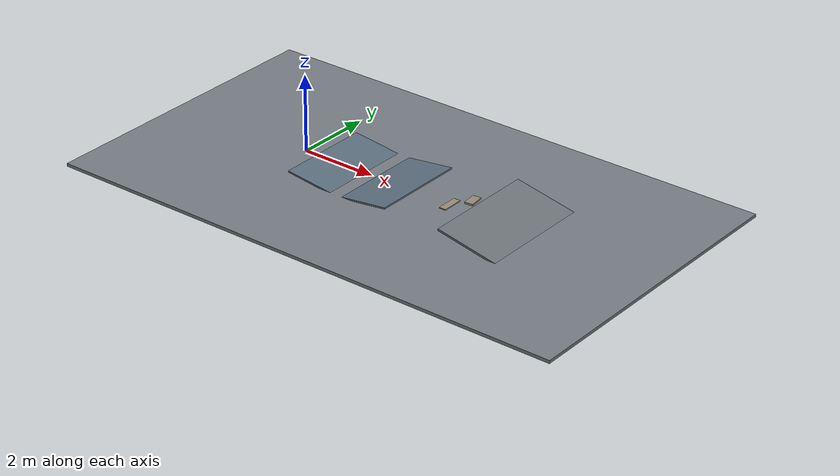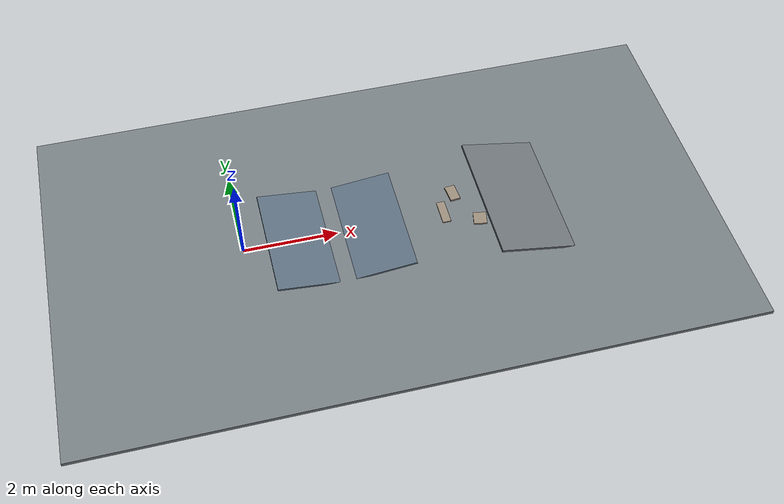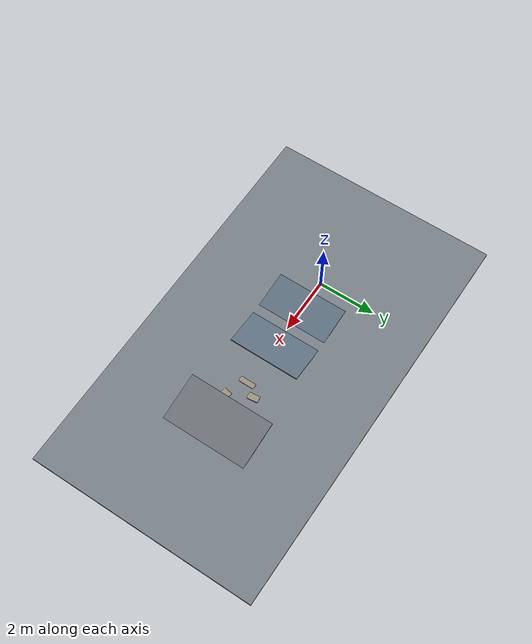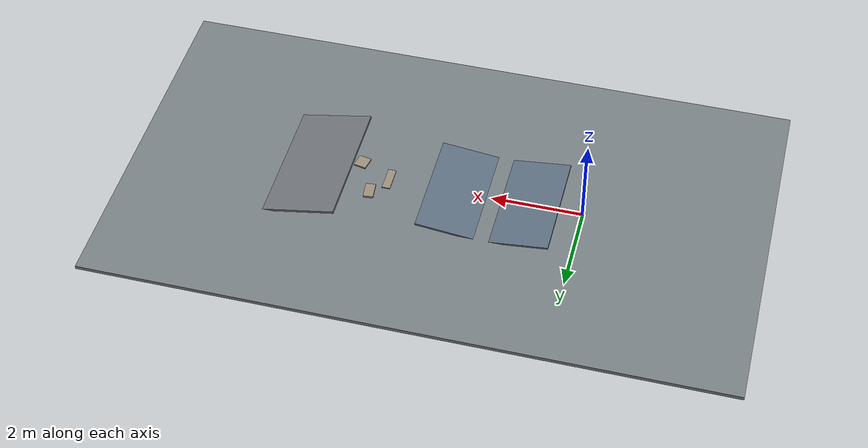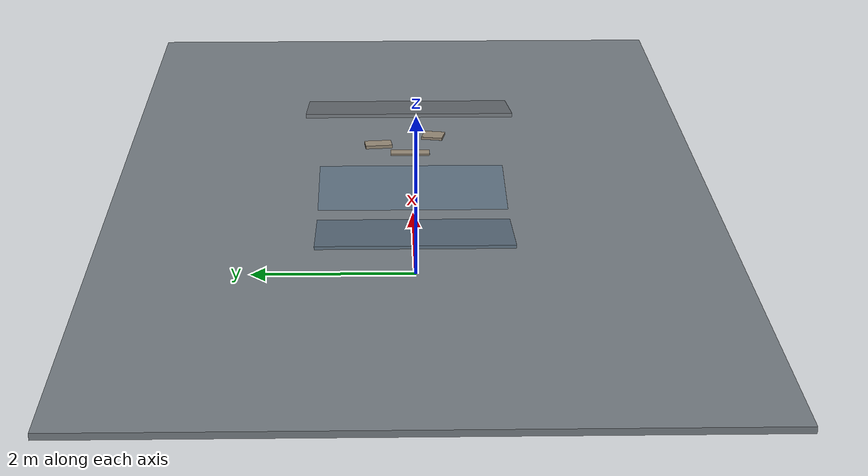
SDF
<?xml version="1.0"?>
<sdf version="1.10">
  <world name="swingboy_rough_test">
    <physics name="default_physics" type="ignored">
      <max_step_size>0.002</max_step_size>
      <real_time_update_rate>500</real_time_update_rate>
    </physics>

    <plugin filename="gz-sim-physics-system" name="gz::sim::systems::Physics"/>
    <plugin filename="gz-sim-user-commands-system" name="gz::sim::systems::UserCommands"/>
    <plugin filename="gz-sim-scene-broadcaster-system" name="gz::sim::systems::SceneBroadcaster"/>
    <light name="sun" type="directional">
      <cast_shadows>true</cast_shadows>
      <pose>0 0 8 0 0 0</pose>
      <diffuse>0.9 0.9 0.85 1</diffuse>
      <specular>0.2 0.2 0.2 1</specular>
      <direction>-0.4 0.2 -1</direction>
    </light>

    <model name="ground_plane">
      <static>true</static>
      <link name="link">
        <collision name="collision">
          <geometry>
            <box>
              <size>14 8 0.08</size>
            </box>
          </geometry>
          <surface>
            <friction>
              <ode>
                <mu>1.2</mu>
                <mu2>1.2</mu2>
              </ode>
            </friction>
          </surface>
        </collision>
        <visual name="visual">
          <geometry>
            <box>
              <size>14 8 0.08</size>
            </box>
          </geometry>
          <material>
            <diffuse>0.45 0.48 0.50 1</diffuse>
          </material>
        </visual>
      </link>
      <pose>3 0 -0.04 0 0 0</pose>
    </model>

    <model name="low_ramp_up">
      <static>true</static>
      <link name="link">
        <collision name="collision">
          <geometry>
            <box>
              <size>1.4 2.5 0.04</size>
            </box>
          </geometry>
        </collision>
        <visual name="visual">
          <geometry>
            <box>
              <size>1.4 2.5 0.04</size>
            </box>
          </geometry>
          <material>
            <diffuse>0.35 0.42 0.48 1</diffuse>
          </material>
        </visual>
      </link>
      <pose>1.2 0 0.05 0 0.12 0</pose>
    </model>

    <model name="low_ramp_down">
      <static>true</static>
      <link name="link">
        <collision name="collision">
          <geometry>
            <box>
              <size>1.4 2.5 0.04</size>
            </box>
          </geometry>
        </collision>
        <visual name="visual">
          <geometry>
            <box>
              <size>1.4 2.5 0.04</size>
            </box>
          </geometry>
          <material>
            <diffuse>0.35 0.42 0.48 1</diffuse>
          </material>
        </visual>
      </link>
      <pose>2.7 0 0.05 0 -0.12 0</pose>
    </model>

    <model name="small_rough_blocks">
      <static>true</static>
      <link name="link">
        <visual name="visual_0">
          <pose>0 0 0 0 0 0</pose>
          <geometry><box><size>0.18 0.55 0.025</size></box></geometry>
          <material><diffuse>0.58 0.53 0.46 1</diffuse></material>
        </visual>
        <collision name="collision_0">
          <pose>0 0 0 0 0 0</pose>
          <geometry><box><size>0.18 0.55 0.025</size></box></geometry>
        </collision>
        <visual name="visual_1">
          <pose>0.32 0.45 0.012 0 0 0.1</pose>
          <geometry><box><size>0.22 0.38 0.045</size></box></geometry>
          <material><diffuse>0.58 0.53 0.46 1</diffuse></material>
        </visual>
        <collision name="collision_1">
          <pose>0.32 0.45 0.012 0 0 0.1</pose>
          <geometry><box><size>0.22 0.38 0.045</size></box></geometry>
        </collision>
        <visual name="visual_2">
          <pose>0.70 -0.35 0.01 0 0 -0.2</pose>
          <geometry><box><size>0.28 0.30 0.035</size></box></geometry>
          <material><diffuse>0.58 0.53 0.46 1</diffuse></material>
        </visual>
        <collision name="collision_2">
          <pose>0.70 -0.35 0.01 0 0 -0.2</pose>
          <geometry><box><size>0.28 0.30 0.035</size></box></geometry>
        </collision>
      </link>
      <pose>4.3 0 0.02 0 0 0</pose>
    </model>

    <model name="skate_style_bank">
      <static>true</static>
      <link name="link">
        <collision name="collision">
          <geometry>
            <box>
              <size>1.8 3.0 0.05</size>
            </box>
          </geometry>
        </collision>
        <visual name="visual">
          <geometry>
            <box>
              <size>1.8 3.0 0.05</size>
            </box>
          </geometry>
          <material>
            <diffuse>0.42 0.44 0.46 1</diffuse>
          </material>
        </visual>
      </link>
      <pose>6.0 0 0.12 0 0.20 0</pose>
    </model>
  </world>
</sdf>
